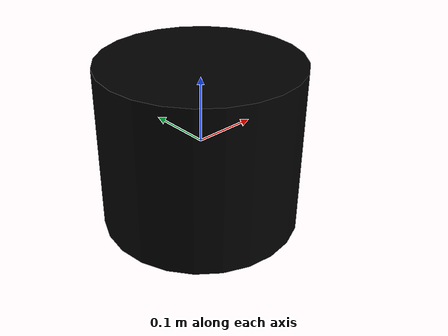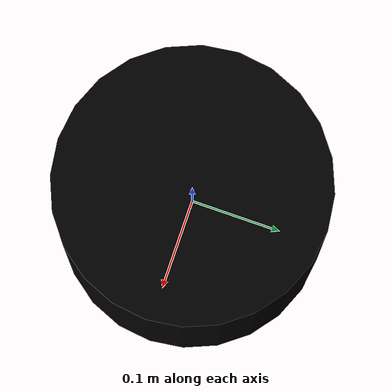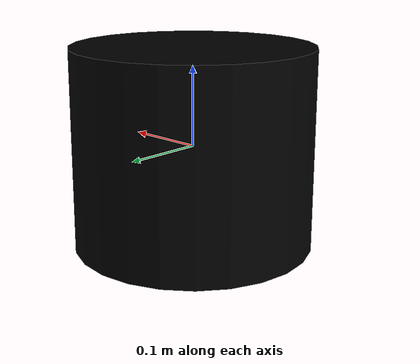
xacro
<?xml version="1.0"?>

<robot xmlns:xacro="http://ros.org/wiki/xacro" name="c5_xacro">
    <xacro:arg name="x" default="0"/>
    <xacro:arg name="y" default="0"/>
    <xacro:arg name="z" default="0"/>

    <link name="c5_link">
        <inertial>
            <origin xyz="$(arg x) $(arg y) $(arg z)" />
            <mass value="3.2" />
            <inertia  ixx="0.0" ixy="0.0"  ixz="0.0"  iyy="0.0"  iyz="0.0"  izz="0.0" />
        </inertial>
        <visual>
            <origin xyz="$(arg x) $(arg y) $(arg z)"/>
            <geometry>
                <cylinder length="0.25" radius="0.15"/>
            </geometry>
            <material name="black">
                <color rgba="0 0 0 1"/>
            </material>
        </visual>
        <collision>
            <origin xyz="$(arg x) $(arg y) $(arg z)"/>
            <geometry>
                <cylinder length="0.25" radius="0.15"/>
            </geometry>
        </collision>
    </link>

    <gazebo reference="c5_link">
        <sensor type="gpu_ray" name="head_hokuyo_sensor">
            <pose>0 0 0 0 0 0</pose>
            <visualize>true</visualize>
            <update_rate>40</update_rate>
            <ray>
                <scan>
                    <horizontal>
                        <samples>600</samples>
                        <resolution>1</resolution>
                        <min_angle>-1.57</min_angle>
                        <max_angle>1.57</max_angle>
                    </horizontal>
                </scan>
                <range>
                    <min>0.35</min>
                    <max>50.0</max>
                    <resolution>0.01</resolution>
                </range>
                <noise>
                    <type>gaussian</type>
                    <mean>0.0</mean>
                    <stddev>0.01</stddev>
                </noise>
            </ray>
            <plugin name="gazebo_ros_head_hokuyo_controller" filename="libgazebo_ros_gpu_laser.so">
                <topicName>/c5/laser/scan</topicName>
                <frameName>c5_link</frameName>
            </plugin>
        </sensor>
    </gazebo>

</robot>
